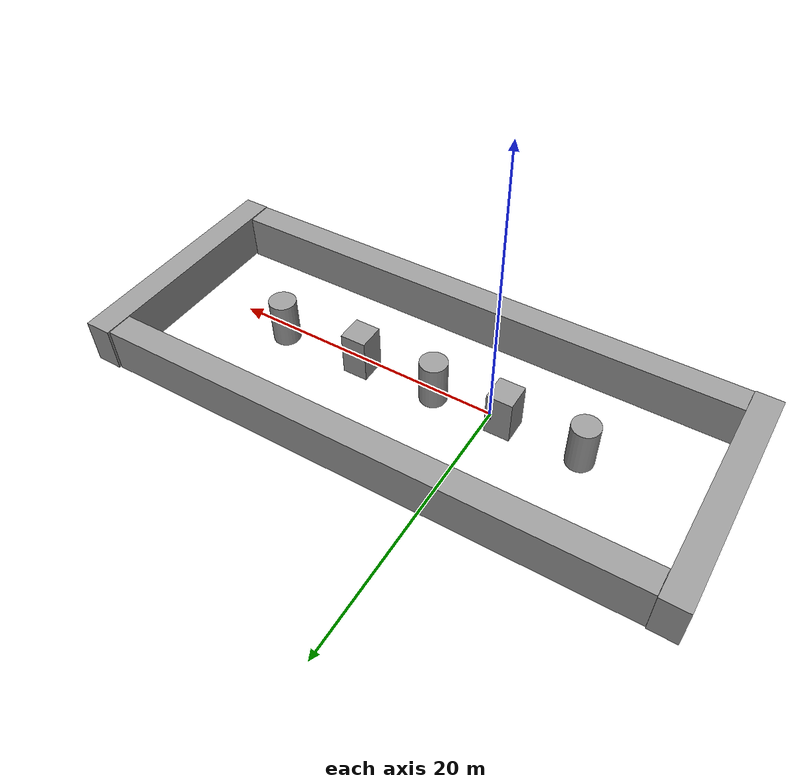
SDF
<sdf version="1.7">
 <world name="oceans_waves">
  <physics name="default_physics" default="1" type="ode">
   <max_step_size>0.002</max_step_size>
   <real_time_factor>1</real_time_factor>
   <real_time_update_rate>500</real_time_update_rate>
   <ode>
    <solver>
     <type>world</type>
     <iters>50</iters>
     <sor>1.3</sor>
     <use_dynamic_moi_rescaling>0</use_dynamic_moi_rescaling>
    </solver>
    <constraints>
     <cfm>0</cfm>
     <erp>0.2</erp>
     <contact_max_correcting_vel>100</contact_max_correcting_vel>
     <contact_surface_layer>0.001</contact_surface_layer>
    </constraints>
    <ode_quiet>1</ode_quiet>
   </ode>
  </physics>
  <scene>
   <ambient>0.01 0.01 0.01 1</ambient>
   <sky><clouds><speed>12</speed></clouds></sky>
   <shadows>1</shadows>
   <background>0.7 0.7 0.7 1</background>
  </scene>
  <spherical_coordinates>
   <latitude_deg>56.719</latitude_deg>
   <longitude_deg>3.51562</longitude_deg>
   <surface_model>EARTH_WGS84</surface_model>
   <elevation>0</elevation>
   <heading_deg>0</heading_deg>
  </spherical_coordinates>
  <light name="sun1" type="directional">
   <pose>50 0 150 0 -0 0</pose>
   <diffuse>1 1 1 1</diffuse>
   <specular>0.1 0.1 0.1 1</specular>
   <direction>0.3 0.3 -1</direction>
   <cast_shadows>0</cast_shadows>
   <attenuation><range>10</range></attenuation>
   <spot><inner_angle>0</inner_angle><outer_angle>0</outer_angle><falloff>0</falloff></spot>
  </light>
  <light name="sun_diffuse" type="directional">
   <pose>-50 0 -150 0 -0 0</pose>
   <diffuse>0.6 0.6 0.6 1</diffuse>
   <specular>0 0 0 1</specular>
   <direction>-0.3 -0.3 -1</direction>
   <cast_shadows>0</cast_shadows>
   <attenuation><range>10</range></attenuation>
   <spot><inner_angle>0</inner_angle><outer_angle>0</outer_angle><falloff>0</falloff></spot>
  </light>
  <light name="sun_diffuse_1" type="directional">
   <pose>-100 500 -20 0 -0 0</pose>
   <diffuse>0.8 0.8 0.8 1</diffuse>
   <specular>1 1 1 1</specular>
   <direction>-1 -1 0</direction>
   <cast_shadows>0</cast_shadows>
   <attenuation><range>10</range></attenuation>
   <spot><inner_angle>0</inner_angle><outer_angle>0</outer_angle><falloff>0</falloff></spot>
  </light>
  <light name="sun_diffuse_2" type="directional">
   <pose>-150 -130 50 0 -0 0</pose>
   <diffuse>0.6 0.6 0.6 1</diffuse>
   <specular>0.2 0.2 0.2 1</specular>
   <direction>0.5 0.5 -1</direction>
   <cast_shadows>0</cast_shadows>
   <attenuation><range>10</range></attenuation>
   <spot><inner_angle>0</inner_angle><outer_angle>0</outer_angle><falloff>0</falloff></spot>
  </light>
  <model name="world_ned">
   <static>1</static>
   <link name="world_ned">
    <gravity>0</gravity>
    <pose>0 0 0 -3.14159 -0 1.5708</pose>
    <visual name="N_visual">
     <pose>0.25 0 0 1.5708 -0 1.5708</pose>
     <geometry><cylinder><radius>0.01</radius><length>0.5</length></cylinder></geometry>
     <material>
      <script><uri>file://media/materials/scripts/gazebo.material</uri><name>Gazebo/Red</name></script>
     </material>
    </visual>
    <visual name="E_visual">
     <pose>0 0.25 0 1.5708 -0 0</pose>
     <geometry><cylinder><radius>0.01</radius><length>0.5</length></cylinder></geometry>
     <material>
      <script><uri>file://media/materials/scripts/gazebo.material</uri><name>Gazebo/Green</name></script>
     </material>
    </visual>
    <visual name="D_visual">
     <pose>0 0 0.25 0 -0 0</pose>
     <geometry><cylinder><radius>0.01</radius><length>0.5</length></cylinder></geometry>
     <material>
      <script><uri>file://media/materials/scripts/gazebo.material</uri><name>Gazebo/Blue</name></script>
     </material>
    </visual>
   </link>
  </model>
  <plugin name="underwater_current_plugin" filename="libuuv_underwater_current_ros_plugin.so">
   <namespace>hydrodynamics</namespace>
   <constant_current>
    <topic>current_velocity</topic>
    <velocity><mean>0</mean><min>0</min><max>5</max><mu>0.0</mu><noiseAmp>0.0</noiseAmp></velocity>
    <horizontal_angle>
     <mean>0</mean>
     <min>-3.141592653589793238</min>
     <max>3.141592653589793238</max>
     <mu>0.0</mu>
     <noiseAmp>0.0</noiseAmp>
    </horizontal_angle>
    <vertical_angle>
     <mean>0</mean>
     <min>-3.141592653589793238</min>
     <max>3.141592653589793238</max>
     <mu>0.0</mu>
     <noiseAmp>0.0</noiseAmp>
    </vertical_angle>
   </constant_current>
  </plugin>
  <plugin name="sc_interface" filename="libuuv_sc_ros_interface_plugin.so"/>
  <gravity>0 0 -9.8</gravity>
  <magnetic_field>6e-06 2.3e-05 -4.2e-05</magnetic_field>
  <atmosphere type="adiabatic"/>
  <model name="unit_cylinder">
   <pose>-5.93506 -1.83232 -1.17968 3e-06 3e-06 0.005635</pose>
   <link name="link">
    <inertial>
     <mass>1</mass>
     <inertia><ixx>0.145833</ixx><ixy>0</ixy><ixz>0</ixz><iyy>0.145833</iyy><iyz>0</iyz><izz>0.125</izz></inertia>
    </inertial>
    <collision name="collision">
     <geometry><cylinder><radius>1.02413</radius><length>3.54063</length></cylinder></geometry>
    </collision>
    <visual name="visual">
     <geometry><cylinder><radius>1.02413</radius><length>3.54063</length></cylinder></geometry>
     <material>
      <script><name>Gazebo/Grey</name><uri>file://media/materials/scripts/gazebo.material</uri></script>
     </material>
    </visual>
   </link>
  </model>
  <model name="unit_box">
   <pose>-0.150994 -1.87133 -1.22137 0 -0 0.00572</pose>
   <link name="link">
    <inertial>
     <mass>1</mass>
     <inertia>
      <ixx>0.166667</ixx>
      <ixy>0</ixy>
      <ixz>0</ixz>
      <iyy>0.166667</iyy>
      <iyz>0</iyz>
      <izz>0.166667</izz>
     </inertia>
    </inertial>
    <collision name="collision"><geometry><box><size>1.93267 1.99029 3.45726</size></box></geometry></collision>
    <visual name="visual">
     <geometry><box><size>1.93267 1.99029 3.45726</size></box></geometry>
     <material>
      <script><name>Gazebo/Grey</name><uri>file://media/materials/scripts/gazebo.material</uri></script>
     </material>
    </visual>
   </link>
  </model>
  <model name="unit_box_clone">
   <pose>11.3595 -1.66691 -1.22137 0 -0 0.00593</pose>
   <link name="link">
    <inertial>
     <mass>1</mass>
     <inertia>
      <ixx>0.166667</ixx>
      <ixy>0</ixy>
      <ixz>0</ixz>
      <iyy>0.166667</iyy>
      <iyz>0</iyz>
      <izz>0.166667</izz>
     </inertia>
    </inertial>
    <collision name="collision"><geometry><box><size>1.93268 1.99029 3.45726</size></box></geometry></collision>
    <visual name="visual">
     <geometry><box><size>1.93268 1.99029 3.45726</size></box></geometry>
     <material>
      <script><name>Gazebo/Grey</name><uri>file://media/materials/scripts/gazebo.material</uri></script>
     </material>
    </visual>
   </link>
  </model>
  <model name="unit_box_clone_clone">
   <pose>6.12092 -9.37434 -1.22137 0 -0 0.00593</pose>
   <link name="link">
    <inertial>
     <mass>1</mass>
     <inertia>
      <ixx>0.166667</ixx>
      <ixy>0</ixy>
      <ixz>0</ixz>
      <iyy>0.166667</iyy>
      <iyz>0</iyz>
      <izz>0.166667</izz>
     </inertia>
    </inertial>
    <collision name="collision"><geometry><box><size>40.6798 1.99029 3.45726</size></box></geometry></collision>
    <visual name="visual">
     <geometry><box><size>40.6798 1.99029 3.45726</size></box></geometry>
     <material>
      <script><name>Gazebo/Grey</name><uri>file://media/materials/scripts/gazebo.material</uri></script>
     </material>
    </visual>
   </link>
  </model>
  <model name="unit_box_clone_clone_clone">
   <pose>6.20711 6.44397 -1.22137 0 -0 0.00593</pose>
   <link name="link">
    <inertial>
     <mass>1</mass>
     <inertia>
      <ixx>0.166667</ixx>
      <ixy>0</ixy>
      <ixz>0</ixz>
      <iyy>0.166667</iyy>
      <iyz>0</iyz>
      <izz>0.166667</izz>
     </inertia>
    </inertial>
    <collision name="collision"><geometry><box><size>40.6797 1.99029 3.45726</size></box></geometry></collision>
    <visual name="visual">
     <geometry><box><size>40.6797 1.99029 3.45726</size></box></geometry>
     <material>
      <script><name>Gazebo/Grey</name><uri>file://media/materials/scripts/gazebo.material</uri></script>
     </material>
    </visual>
   </link>
  </model>
  <model name="unit_box_clone_clone_clone_clone">
   <pose>-15.1917 -1.57336 -1.22137 0 -0 1.56617</pose>
   <link name="link">
    <inertial>
     <mass>1</mass>
     <inertia>
      <ixx>0.166667</ixx>
      <ixy>0</ixy>
      <ixz>0</ixz>
      <iyy>0.166667</iyy>
      <iyz>0</iyz>
      <izz>0.166667</izz>
     </inertia>
    </inertial>
    <collision name="collision"><geometry><box><size>17.9806 1.99029 3.45726</size></box></geometry></collision>
    <visual name="visual">
     <geometry><box><size>17.9806 1.99029 3.45726</size></box></geometry>
     <material>
      <script><name>Gazebo/Grey</name><uri>file://media/materials/scripts/gazebo.material</uri></script>
     </material>
    </visual>
   </link>
  </model>
  <model name="unit_box_clone_clone_clone_clone_clone">
   <pose>27.5757 -1.30804 -1.22137 0 -0 1.56641</pose>
   <link name="link">
    <inertial>
     <mass>1</mass>
     <inertia>
      <ixx>0.166667</ixx>
      <ixy>0</ixy>
      <ixz>0</ixz>
      <iyy>0.166667</iyy>
      <iyz>0</iyz>
      <izz>0.166667</izz>
     </inertia>
    </inertial>
    <collision name="collision"><geometry><box><size>17.9806 1.99029 3.45726</size></box></geometry></collision>
    <visual name="visual">
     <geometry><box><size>17.9806 1.99029 3.45726</size></box></geometry>
     <material>
      <script><name>Gazebo/Grey</name><uri>file://media/materials/scripts/gazebo.material</uri></script>
     </material>
    </visual>
   </link>
  </model>
  <model name="unit_cylinder_clone">
   <pose>5.34783 -1.72985 -1.1797 -7e-06 8e-06 0.002146</pose>
   <link name="link">
    <inertial>
     <mass>1</mass>
     <inertia><ixx>0.145833</ixx><ixy>0</ixy><ixz>0</ixz><iyy>0.145833</iyy><iyz>0</iyz><izz>0.125</izz></inertia>
    </inertial>
    <collision name="collision">
     <geometry><cylinder><radius>1.02413</radius><length>3.54063</length></cylinder></geometry>
    </collision>
    <visual name="visual">
     <geometry><cylinder><radius>1.02413</radius><length>3.54063</length></cylinder></geometry>
     <material>
      <script><name>Gazebo/Grey</name><uri>file://media/materials/scripts/gazebo.material</uri></script>
     </material>
    </visual>
   </link>
  </model>
  <model name="unit_cylinder_clone_0">
   <pose>18.0995 -1.45188 -1.17969 0 -0 0.005605</pose>
   <link name="link">
    <inertial>
     <mass>1</mass>
     <inertia><ixx>0.145833</ixx><ixy>0</ixy><ixz>0</ixz><iyy>0.145833</iyy><iyz>0</iyz><izz>0.125</izz></inertia>
    </inertial>
    <collision name="collision">
     <geometry><cylinder><radius>1.02413</radius><length>3.54063</length></cylinder></geometry>
    </collision>
    <visual name="visual">
     <geometry><cylinder><radius>1.02413</radius><length>3.54063</length></cylinder></geometry>
     <material>
      <script><name>Gazebo/Grey</name><uri>file://media/materials/scripts/gazebo.material</uri></script>
     </material>
    </visual>
   </link>
  </model>
 </world>
</sdf>
